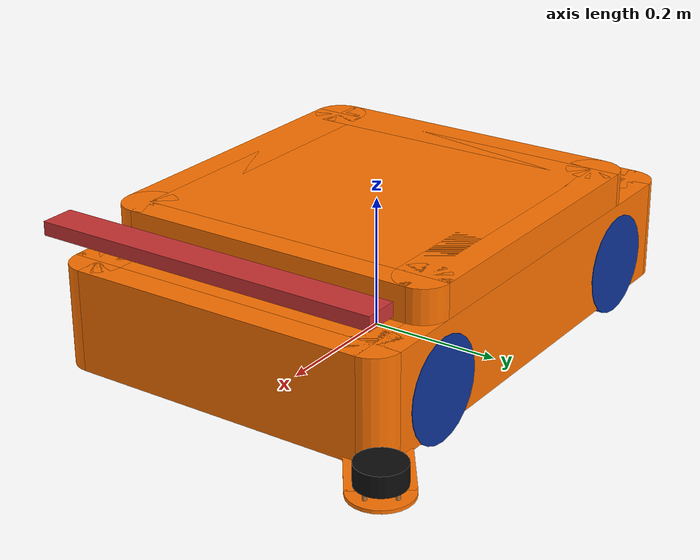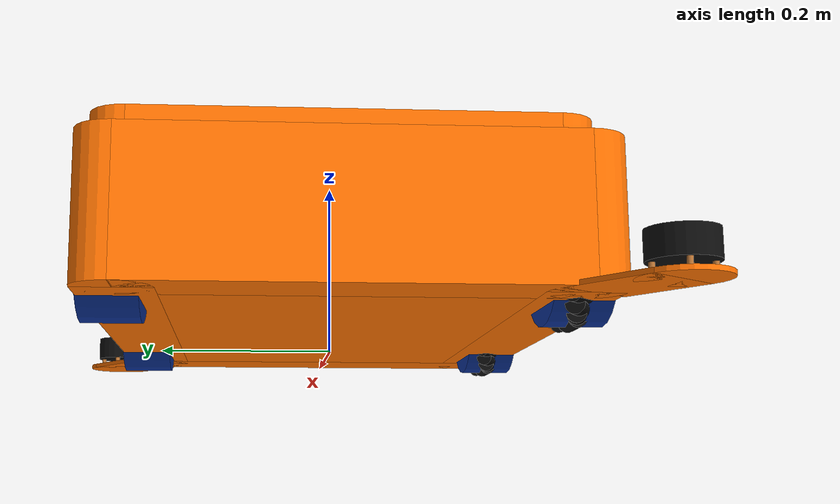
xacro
<?xml version="1.0"?>
<!--
mecanum_robot_detailed.urdf.xacro
Kết hợp model chi tiết từ clb_mecanum vào cấu trúc mecanum_robot
-->

<robot name="mecanum_robot_detailed" xmlns:xacro="http://ros.org/wiki/xacro">

  <!-- PROPERTIES - Từ File 1 (clb_mecanum) -->

  <!-- Wheel properties -->
  <xacro:property name="wheel_radius" value="0.075"/>
  <xacro:property name="wheel_core_radius" value="${wheel_radius}"/>
  <xacro:property name="wheel_width" value="0.062"/>
  <xacro:property name="wheel_mass" value="1.5"/>

  <!-- Base properties -->
  <xacro:property name="lx" value="0.24"/>
  <xacro:property name="ly" value="0.235"/>
  <xacro:property name="base_len" value="0.76"/>
  <xacro:property name="base_wid" value="0.53"/>
  <xacro:property name="base_thk" value="0.20"/>
  <xacro:property name="base_z" value="0.02"/>
  <xacro:property name="base_corner_r" value="0.04"/>
  <xacro:property name="base_mass" value="20.0"/>

  <!-- Base geometry calculations -->
  <xacro:property name="end_drop" value="0.05"/>
  <xacro:property name="front_len" value="0.11"/>
  <xacro:property name="rear_len" value="0.11"/>
  <xacro:property name="mid_len" value="${base_len - front_len - rear_len}"/>
  <xacro:property name="mid_x" value="${(rear_len - front_len)/2.0}"/>
  <xacro:property name="lower_h" value="${base_thk - end_drop}"/>
  <xacro:property name="lower_z" value="${base_z + lower_h/2.0}"/>
  <xacro:property name="upper_h" value="${end_drop}"/>
  <xacro:property name="upper_z" value="${base_z + lower_h + upper_h/2.0}"/>

  <!-- IMU properties -->
  <xacro:property name="imu_x" value="0.0"/>
  <xacro:property name="imu_y" value="0.0"/>
  <xacro:property name="imu_z" value="${base_z + base_thk/2.0}"/>
  <xacro:property name="imu_roll" value="0.0"/>
  <xacro:property name="imu_pitch" value="0.0"/>
  <xacro:property name="imu_yaw" value="0.0"/>

  <!-- Lidar properties -->
  <xacro:property name="lidar_body_r" value="0.035"/>
  <xacro:property name="lidar_body_h" value="0.03"/>
  <xacro:property name="lidar_center_z" value="0.05"/>
  <xacro:property name="lidar_plate_r" value="0.045"/>
  <xacro:property name="lidar_plate_w" value="${lidar_plate_r * 2.0}"/>
  <xacro:property name="lidar_plate_len" value="0.10"/>
  <xacro:property name="lidar_plate_h" value="0.005"/>
  <xacro:property name="lidar_plate_box_x" value="${lidar_plate_len/2.0 - lidar_plate_r}"/>
  <xacro:property name="lidar_plate_cap_x" value="${-lidar_plate_r}"/>
  <xacro:property name="lidar_plate_shift_x" value="${-lidar_plate_cap_x}"/>
  <xacro:property name="lidar_plate_z" value="${base_z + lidar_plate_h/2.0}"/>
  <xacro:property name="lidar_body_offset_z" value="${lidar_center_z - lidar_plate_z}"/>
  <xacro:property name="lidar_post_r" value="0.003"/>
  <xacro:property name="lidar_post_xy" value="0.02"/>
  <xacro:property name="lidar_post_h" value="${lidar_center_z - lidar_body_h/2.0 - (base_z + lidar_plate_h)}"/>
  <xacro:property name="lidar_post_z" value="${lidar_plate_h/2.0 + lidar_post_h/2.0}"/>
  <xacro:property name="lidar_mount_x" value="0.42"/>
  <xacro:property name="lidar_mount_y" value="0.29"/>

  <xacro:property name="lidar1_x" value="${lidar_mount_x}"/>
  <xacro:property name="lidar1_y" value="${lidar_mount_y}"/>
  <xacro:property name="lidar1_yaw" value="3.141592653589793"/>

  <xacro:property name="lidar2_x" value="${-lidar_mount_x}"/>
  <xacro:property name="lidar2_y" value="${-lidar_mount_y}"/>
  <xacro:property name="lidar2_yaw" value="0.0"/>
  <xacro:property name="lidar_mount_yaw_front" value="3.769911"/>
  <xacro:property name="lidar_mount_yaw_rear" value="0.628319"/>

  <!-- Math constants -->
  <xacro:property name="pi_const" value="3.141592653589793"/>
  <xacro:property name="pi_2" value="${pi_const/2.0}"/>
  <xacro:property name="pi_4" value="${pi_const/4.0}"/>
  <xacro:property name="pi_12" value="${pi_const/12.0}"/>

  <!-- Mecanum roller properties -->
  <xacro:property name="roller_radius" value="0.0104"/>
  <xacro:property name="roller_length" value="${wheel_width * 0.68}"/>
  <xacro:property name="roller_offset" value="${wheel_radius - roller_radius + 0.003}"/>
  <xacro:property name="roller_diag" value="${roller_offset * 0.7071}"/>
  <xacro:property name="wheel_hub_radius" value="0.02"/>
  <xacro:property name="wheel_hub_len" value="${wheel_width * 0.4}"/>
  <xacro:property name="spoke_len" value="${wheel_core_radius * 1.4}"/>
  <xacro:property name="spoke_wid" value="${wheel_radius * 0.20}"/>
  <xacro:property name="spoke_thk" value="${wheel_width * 0.18}"/>

  <!-- MATERIALS -->

  <material name="orange">
    <color rgba="1.0 0.45 0.0 1.0"/>
  </material>

  <material name="blue_dark">
    <color rgba="0.05 0.2 0.6 1.0"/>
  </material>

  <material name="black">
    <color rgba="0.05 0.05 0.05 1.0"/>
  </material>

  <material name="copper">
    <color rgba="0.72 0.45 0.2 1.0"/>
  </material>

  <material name="gray">
    <color rgba="0.5 0.5 0.5 1.0"/>
  </material>

  <material name="white">
    <color rgba="1.0 1.0 1.0 1.0"/>
  </material>

  <material name="blue">
    <color rgba="0.2 0.2 0.8 1.0"/>
  </material>

  <material name="red">
    <color rgba="0.8 0.2 0.2 1.0"/>
  </material>

  <material name="green">
    <color rgba="0.2 0.8 0.2 1.0"/>
  </material>

  <!-- MACROS - Từ File 1 -->

  <!-- Rounded box visual macro -->
  <xacro:macro name="rounded_box_visual" params="length width height x y z r material_name">
    <visual>
      <origin xyz="${x} ${y} ${z}" rpy="0 0 0"/>
      <geometry>
        <box size="${length - 2*r} ${width - 2*r} ${height}"/>
      </geometry>
      <material name="${material_name}"/>
    </visual>
    <visual>
      <origin xyz="${x} ${y + width/2.0 - r} ${z}" rpy="0 0 0"/>
      <geometry>
        <box size="${length - 2*r} ${2*r} ${height}"/>
      </geometry>
      <material name="${material_name}"/>
    </visual>
    <visual>
      <origin xyz="${x} ${y - width/2.0 + r} ${z}" rpy="0 0 0"/>
      <geometry>
        <box size="${length - 2*r} ${2*r} ${height}"/>
      </geometry>
      <material name="${material_name}"/>
    </visual>
    <visual>
      <origin xyz="${x + length/2.0 - r} ${y} ${z}" rpy="0 0 0"/>
      <geometry>
        <box size="${2*r} ${width - 2*r} ${height}"/>
      </geometry>
      <material name="${material_name}"/>
    </visual>
    <visual>
      <origin xyz="${x - length/2.0 + r} ${y} ${z}" rpy="0 0 0"/>
      <geometry>
        <box size="${2*r} ${width - 2*r} ${height}"/>
      </geometry>
      <material name="${material_name}"/>
    </visual>
    <visual>
      <origin xyz="${x + length/2.0 - r} ${y + width/2.0 - r} ${z}" rpy="0 0 0"/>
      <geometry>
        <cylinder radius="${r}" length="${height}"/>
      </geometry>
      <material name="${material_name}"/>
    </visual>
    <visual>
      <origin xyz="${x + length/2.0 - r} ${y - width/2.0 + r} ${z}" rpy="0 0 0"/>
      <geometry>
        <cylinder radius="${r}" length="${height}"/>
      </geometry>
      <material name="${material_name}"/>
    </visual>
    <visual>
      <origin xyz="${x - length/2.0 + r} ${y + width/2.0 - r} ${z}" rpy="0 0 0"/>
      <geometry>
        <cylinder radius="${r}" length="${height}"/>
      </geometry>
      <material name="${material_name}"/>
    </visual>
    <visual>
      <origin xyz="${x - length/2.0 + r} ${y - width/2.0 + r} ${z}" rpy="0 0 0"/>
      <geometry>
        <cylinder radius="${r}" length="${height}"/>
      </geometry>
      <material name="${material_name}"/>
    </visual>
  </xacro:macro>

  <!-- Roller macro -->
  <xacro:macro name="roller" params="x z yaw tilt">
    <visual>
      <origin xyz="${x} 0 ${z}" rpy="1.57079632679 ${tilt} ${yaw}"/>
      <geometry>
        <cylinder radius="${roller_radius}" length="${roller_length}"/>
      </geometry>
      <material name="black"/>
    </visual>
  </xacro:macro>

  <!-- Roller at angle macro -->
  <xacro:macro name="roller_at" params="angle tilt dir">
    <xacro:roller x="${roller_offset * cos(angle * dir)}"
                  z="${roller_offset * sin(angle * dir)}"
                  yaw="${angle * dir}"
                  tilt="${tilt}"/>
  </xacro:macro>

  <!-- Wheel spoke macro -->
  <xacro:macro name="wheel_spoke" params="angle">
    <visual>
      <origin xyz="0 0 0" rpy="0 ${angle} 0"/>
      <geometry>
        <box size="${spoke_len} ${spoke_thk} ${spoke_wid}"/>
      </geometry>
      <material name="gray"/>
    </visual>
  </xacro:macro>

  <!-- Mecanum wheel macro -->
  <xacro:macro name="mecanum_wheel" params="link_name joint_name x y roller_tilt angle_dir">
    <link name="${link_name}">
      <!-- Wheel core -->
      <visual>
        <origin xyz="0 0 0" rpy="1.57079632679 0 0"/>
        <geometry>
          <cylinder radius="${wheel_core_radius}" length="${wheel_width}"/>
        </geometry>
        <material name="blue_dark"/>
      </visual>

      <!-- Wheel hub -->
      <visual>
        <origin xyz="0 0 0" rpy="1.57079632679 0 0"/>
        <geometry>
          <cylinder radius="${wheel_hub_radius}" length="${wheel_hub_len}"/>
        </geometry>
        <material name="gray"/>
      </visual>

      <!-- Spokes -->
      <xacro:wheel_spoke angle="0"/>
      <xacro:wheel_spoke angle="${pi_const/3.0}"/>
      <xacro:wheel_spoke angle="${pi_const*2.0/3.0}"/>
      <xacro:wheel_spoke angle="${pi_const}"/>
      <xacro:wheel_spoke angle="${pi_const*4.0/3.0}"/>
      <xacro:wheel_spoke angle="${pi_const*5.0/3.0}"/>

      <!-- Rollers - 12 rollers around the wheel -->
      <xacro:roller_at angle="0" tilt="${roller_tilt}" dir="${angle_dir}"/>
      <xacro:roller_at angle="${pi_12}" tilt="${roller_tilt}" dir="${angle_dir}"/>
      <xacro:roller_at angle="${pi_12*2}" tilt="${roller_tilt}" dir="${angle_dir}"/>
      <xacro:roller_at angle="${pi_12*3}" tilt="${roller_tilt}" dir="${angle_dir}"/>
      <xacro:roller_at angle="${pi_12*4}" tilt="${roller_tilt}" dir="${angle_dir}"/>
      <xacro:roller_at angle="${pi_12*5}" tilt="${roller_tilt}" dir="${angle_dir}"/>
      <xacro:roller_at angle="${pi_12*6}" tilt="${roller_tilt}" dir="${angle_dir}"/>
      <xacro:roller_at angle="${pi_12*7}" tilt="${roller_tilt}" dir="${angle_dir}"/>
      <xacro:roller_at angle="${pi_12*8}" tilt="${roller_tilt}" dir="${angle_dir}"/>
      <xacro:roller_at angle="${pi_12*9}" tilt="${roller_tilt}" dir="${angle_dir}"/>
      <xacro:roller_at angle="${pi_12*10}" tilt="${roller_tilt}" dir="${angle_dir}"/>
      <xacro:roller_at angle="${pi_12*11}" tilt="${roller_tilt}" dir="${angle_dir}"/>

      <!-- Collision -->
      <collision>
        <origin xyz="0 0 0" rpy="1.57079632679 0 0"/>
        <geometry>
          <cylinder radius="${wheel_radius}" length="${wheel_width}"/>
        </geometry>
      </collision>

      <!-- Inertial -->
      <inertial>
        <mass value="${wheel_mass}"/>
        <origin xyz="0 0 0" rpy="1.57079632679 0 0"/>
        <inertia
          ixx="${(1/12) * wheel_mass * (3*wheel_radius*wheel_radius + wheel_width*wheel_width)}"
          iyy="${(1/12) * wheel_mass * (3*wheel_radius*wheel_radius + wheel_width*wheel_width)}"
          izz="${(1/2) * wheel_mass * wheel_radius*wheel_radius}"
          ixy="0" ixz="0" iyz="0"/>
      </inertial>
    </link>

    <joint name="${joint_name}" type="continuous">
      <parent link="base_link"/>
      <child link="${link_name}"/>
      <origin xyz="${x} ${y} ${wheel_radius}" rpy="0 0 0"/>
      <axis xyz="0 1 0"/>
      <dynamics damping="0.1" friction="0.1"/>
    </joint>
  </xacro:macro>

  <!-- BASE_LINK - Sử dụng rounded box từ File 1 -->

  <link name="base_link">
    <!-- Lower part of base -->
    <xacro:rounded_box_visual
      length="${base_len}"
      width="${base_wid}"
      height="${lower_h}"
      x="0"
      y="0"
      z="${lower_z}"
      r="${base_corner_r}"
      material_name="orange"/>

    <!-- Upper part of base -->
    <xacro:rounded_box_visual
      length="${mid_len}"
      width="${base_wid}"
      height="${upper_h}"
      x="${mid_x}"
      y="0"
      z="${upper_z}"
      r="${base_corner_r}"
      material_name="orange"/>

    <!-- Collision -->
    <collision>
      <geometry>
        <box size="${base_len} ${base_wid} ${base_thk}"/>
      </geometry>
      <origin xyz="0 0 ${base_z + base_thk/2}" rpy="0 0 0"/>
    </collision>

    <!-- Inertial -->
    <inertial>
      <mass value="${base_mass}"/>
      <origin xyz="0 0 ${base_z + base_thk/2}" rpy="0 0 0"/>
      <inertia
        ixx="${(1/12) * base_mass * (base_wid*base_wid + base_thk*base_thk)}"
        iyy="${(1/12) * base_mass * (base_len*base_len + base_thk*base_thk)}"
        izz="${(1/12) * base_mass * (base_len*base_len + base_wid*base_wid)}"
        ixy="0" ixz="0" iyz="0"/>
    </inertial>
  </link>

  <!-- WHEELS - Sử dụng mecanum wheels chi tiết từ File 1 -->

  <xacro:mecanum_wheel
    link_name="wheel_fl"
    joint_name="wheel_fl_joint"
    x="${lx}"
    y="${ly}"
    roller_tilt="${pi_4}"
    angle_dir="1"/>

  <xacro:mecanum_wheel
    link_name="wheel_fr"
    joint_name="wheel_fr_joint"
    x="${lx}"
    y="${-ly}"
    roller_tilt="${-pi_4}"
    angle_dir="-1"/>

  <xacro:mecanum_wheel
    link_name="wheel_rr"
    joint_name="wheel_rr_joint"
    x="${-lx}"
    y="${-ly}"
    roller_tilt="${pi_4}"
    angle_dir="-1"/>

  <xacro:mecanum_wheel
    link_name="wheel_rl"
    joint_name="wheel_rl_joint"
    x="${-lx}"
    y="${ly}"
    roller_tilt="${-pi_4}"
    angle_dir="1"/>

  <!-- IMU SENSOR -->

  <link name="imu_link">
    <visual>
      <origin xyz="0 0 0" rpy="0 0 0"/>
      <geometry>
        <box size="0.06 0.04 0.02"/>
      </geometry>
      <material name="gray"/>
    </visual>

    <collision>
      <origin xyz="0 0 0" rpy="0 0 0"/>
      <geometry>
        <box size="0.06 0.04 0.02"/>
      </geometry>
    </collision>

    <inertial>
      <mass value="0.05"/>
      <origin xyz="0 0 0" rpy="0 0 0"/>
      <inertia
        ixx="0.00001"
        iyy="0.00001"
        izz="0.00001"
        ixy="0" ixz="0" iyz="0"/>
    </inertial>
  </link>

  <joint name="imu_fixed" type="fixed">
    <parent link="base_link"/>
    <child link="imu_link"/>
    <origin xyz="${imu_x} ${imu_y} ${imu_z}"
            rpy="${imu_roll} ${imu_pitch} ${imu_yaw}"/>
  </joint>

  <!-- LIDAR FRONT - Với mounting plate chi tiết -->

  <link name="lidar_front_mount">
    <!-- Mounting plate box -->
    <visual>
      <origin xyz="${lidar_plate_box_x + lidar_plate_shift_x} 0 0" rpy="0 0 0"/>
      <geometry>
        <box size="${lidar_plate_len} ${lidar_plate_w} ${lidar_plate_h}"/>
      </geometry>
      <material name="orange"/>
    </visual>

    <!-- Mounting plate cap -->
    <visual>
      <origin xyz="${lidar_plate_cap_x + lidar_plate_shift_x} 0 0" rpy="0 0 0"/>
      <geometry>
        <cylinder radius="${lidar_plate_r}" length="${lidar_plate_h}"/>
      </geometry>
      <material name="orange"/>
    </visual>

    <!-- Support posts -->
    <visual>
      <origin xyz="${lidar_post_xy} ${lidar_post_xy} ${lidar_post_z}" rpy="0 0 0"/>
      <geometry>
        <cylinder radius="${lidar_post_r}" length="${lidar_post_h}"/>
      </geometry>
      <material name="copper"/>
    </visual>
    <visual>
      <origin xyz="${-lidar_post_xy} ${lidar_post_xy} ${lidar_post_z}" rpy="0 0 0"/>
      <geometry>
        <cylinder radius="${lidar_post_r}" length="${lidar_post_h}"/>
      </geometry>
      <material name="copper"/>
    </visual>
    <visual>
      <origin xyz="${-lidar_post_xy} ${-lidar_post_xy} ${lidar_post_z}" rpy="0 0 0"/>
      <geometry>
        <cylinder radius="${lidar_post_r}" length="${lidar_post_h}"/>
      </geometry>
      <material name="copper"/>
    </visual>
    <visual>
      <origin xyz="${lidar_post_xy} ${-lidar_post_xy} ${lidar_post_z}" rpy="0 0 0"/>
      <geometry>
        <cylinder radius="${lidar_post_r}" length="${lidar_post_h}"/>
      </geometry>
      <material name="copper"/>
    </visual>

    <inertial>
      <mass value="0.1"/>
      <origin xyz="0 0 0" rpy="0 0 0"/>
      <inertia
        ixx="0.0001"
        iyy="0.0001"
        izz="0.0001"
        ixy="0" ixz="0" iyz="0"/>
    </inertial>
  </link>

  <joint name="lidar_front_mount_joint" type="fixed">
    <parent link="base_link"/>
    <child link="lidar_front_mount"/>
    <origin xyz="${lidar1_x} ${lidar1_y} ${lidar_plate_z}"
            rpy="0 0 ${lidar_mount_yaw_front}"/>
  </joint>

  <link name="lidar_front">
    <visual>
      <origin xyz="0 0 0" rpy="0 0 0"/>
      <geometry>
        <cylinder radius="${lidar_body_r}" length="${lidar_body_h}"/>
      </geometry>
      <material name="black"/>
    </visual>

    <collision>
      <origin xyz="0 0 0" rpy="0 0 0"/>
      <geometry>
        <cylinder radius="${lidar_body_r}" length="${lidar_body_h}"/>
      </geometry>
    </collision>

    <inertial>
      <mass value="0.2"/>
      <origin xyz="0 0 0" rpy="0 0 0"/>
      <inertia
        ixx="0.0001"
        iyy="0.0001"
        izz="0.0001"
        ixy="0" ixz="0" iyz="0"/>
    </inertial>
  </link>

  <joint name="lidar_front_joint" type="fixed">
    <parent link="lidar_front_mount"/>
    <child link="lidar_front"/>
    <origin xyz="0 0 ${lidar_body_offset_z}"
            rpy="0 0 ${lidar1_yaw - lidar_mount_yaw_front}"/>
  </joint>

  <!-- LIDAR REAR - Với mounting plate chi tiết -->

  <link name="lidar_rear_mount">
    <!-- Mounting plate box -->
    <visual>
      <origin xyz="${lidar_plate_box_x + lidar_plate_shift_x} 0 0" rpy="0 0 0"/>
      <geometry>
        <box size="${lidar_plate_len} ${lidar_plate_w} ${lidar_plate_h}"/>
      </geometry>
      <material name="orange"/>
    </visual>

    <!-- Mounting plate cap -->
    <visual>
      <origin xyz="${lidar_plate_cap_x + lidar_plate_shift_x} 0 0" rpy="0 0 0"/>
      <geometry>
        <cylinder radius="${lidar_plate_r}" length="${lidar_plate_h}"/>
      </geometry>
      <material name="orange"/>
    </visual>

    <!-- Support posts -->
    <visual>
      <origin xyz="${lidar_post_xy} ${lidar_post_xy} ${lidar_post_z}" rpy="0 0 0"/>
      <geometry>
        <cylinder radius="${lidar_post_r}" length="${lidar_post_h}"/>
      </geometry>
      <material name="copper"/>
    </visual>
    <visual>
      <origin xyz="${-lidar_post_xy} ${lidar_post_xy} ${lidar_post_z}" rpy="0 0 0"/>
      <geometry>
        <cylinder radius="${lidar_post_r}" length="${lidar_post_h}"/>
      </geometry>
      <material name="copper"/>
    </visual>
    <visual>
      <origin xyz="${-lidar_post_xy} ${-lidar_post_xy} ${lidar_post_z}" rpy="0 0 0"/>
      <geometry>
        <cylinder radius="${lidar_post_r}" length="${lidar_post_h}"/>
      </geometry>
      <material name="copper"/>
    </visual>
    <visual>
      <origin xyz="${lidar_post_xy} ${-lidar_post_xy} ${lidar_post_z}" rpy="0 0 0"/>
      <geometry>
        <cylinder radius="${lidar_post_r}" length="${lidar_post_h}"/>
      </geometry>
      <material name="copper"/>
    </visual>

    <inertial>
      <mass value="0.1"/>
      <origin xyz="0 0 0" rpy="0 0 0"/>
      <inertia
        ixx="0.0001"
        iyy="0.0001"
        izz="0.0001"
        ixy="0" ixz="0" iyz="0"/>
    </inertial>
  </link>

  <joint name="lidar_rear_mount_joint" type="fixed">
    <parent link="base_link"/>
    <child link="lidar_rear_mount"/>
    <origin xyz="${lidar2_x} ${lidar2_y} ${lidar_plate_z}"
            rpy="0 0 ${lidar_mount_yaw_rear}"/>
  </joint>

  <link name="lidar_rear">
    <visual>
      <origin xyz="0 0 0" rpy="0 0 0"/>
      <geometry>
        <cylinder radius="${lidar_body_r}" length="${lidar_body_h}"/>
      </geometry>
      <material name="black"/>
    </visual>

    <collision>
      <origin xyz="0 0 0" rpy="0 0 0"/>
      <geometry>
        <cylinder radius="${lidar_body_r}" length="${lidar_body_h}"/>
      </geometry>
    </collision>

    <inertial>
      <mass value="0.2"/>
      <origin xyz="0 0 0" rpy="0 0 0"/>
      <inertia
        ixx="0.0001"
        iyy="0.0001"
        izz="0.0001"
        ixy="0" ixz="0" iyz="0"/>
    </inertial>
  </link>

  <joint name="lidar_rear_joint" type="fixed">
    <parent link="lidar_rear_mount"/>
    <child link="lidar_rear"/>
    <origin xyz="0 0 ${lidar_body_offset_z}"
            rpy="0 0 ${lidar2_yaw - lidar_mount_yaw_rear}"/>
  </joint>

  <!-- FRONT MARKER (từ File 2) -->

  <link name="front_marker">
    <visual>
      <geometry>
        <box size="0.05 0.52 0.02"/>
      </geometry>
      <origin xyz="0 0 0" rpy="0 0 0"/>
      <material name="red"/>
    </visual>
  </link>

  <joint name="front_marker_joint" type="fixed">
    <parent link="base_link"/>
    <child link="front_marker"/>
    <origin xyz="0.375 0 ${base_z + base_thk + 0.01}" rpy="0 0 0"/>
  </joint>

</robot>
